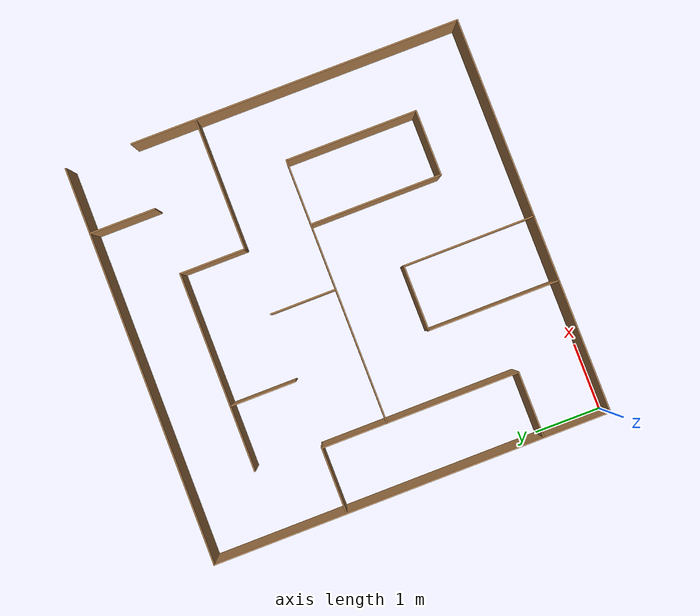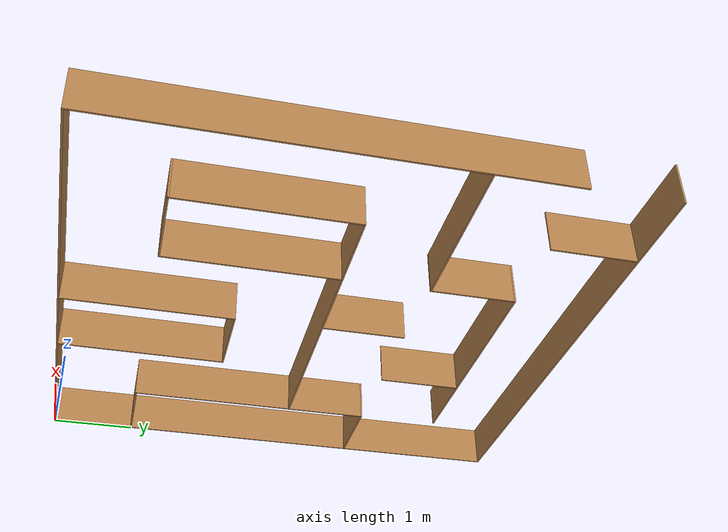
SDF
<?xml version='1.0'?>
<sdf version='1.6'>
  <model name='circuit1v3'>
    <pose frame=''>2.99678 2.98827 0 0 -0 0</pose>
    <link name='Wall_0'>
      <collision name='Wall_0_Collision'>
        <geometry>
          <box>
            <size>6 0.02 0.5</size>
          </box>
        </geometry>
        <pose frame=''>0 0 0.25 0 -0 0</pose>
      </collision>
      <visual name='Wall_0_Visual'>
        <pose frame=''>0 0 0.25 0 -0 0</pose>
        <geometry>
          <box>
            <size>6 0.02 0.5</size>
          </box>
        </geometry>
        <material>
          <script>
            <uri>file://media/materials/scripts/gazebo.material</uri>
            <name>Gazebo/Wood</name>
          </script>
          <ambient>1 1 1 1</ambient>
        </material>
        <meta>
          <layer>0</layer>
        </meta>
      </visual>
      <pose frame=''>0 -2.99 0 0 -0 0</pose>
    </link>
    <link name='Wall_10'>
      <collision name='Wall_10_Collision'>
        <geometry>
          <box>
            <size>3 0.02 0.5</size>
          </box>
        </geometry>
        <pose frame=''>0 0 0.25 0 -0 0</pose>
      </collision>
      <visual name='Wall_10_Visual'>
        <pose frame=''>0 0 0.25 0 -0 0</pose>
        <geometry>
          <box>
            <size>3 0.02 0.5</size>
          </box>
        </geometry>
        <material>
          <script>
            <uri>file://media/materials/scripts/gazebo.material</uri>
            <name>Gazebo/Wood</name>
          </script>
          <ambient>1 1 1 1</ambient>
        </material>
        <meta>
          <layer>0</layer>
        </meta>
      </visual>
      <pose frame=''>-2.00694 -0.492791 0 0 -0 1.5708</pose>
    </link>
    <link name='Wall_12'>
      <collision name='Wall_12_Collision'>
        <geometry>
          <box>
            <size>1 0.02 0.5</size>
          </box>
        </geometry>
        <pose frame=''>0 0 0.25 0 -0 0</pose>
      </collision>
      <visual name='Wall_12_Visual'>
        <pose frame=''>0 0 0.25 0 -0 0</pose>
        <geometry>
          <box>
            <size>1 0.02 0.5</size>
          </box>
        </geometry>
        <material>
          <script>
            <uri>file://media/materials/scripts/gazebo.material</uri>
            <name>Gazebo/Wood</name>
          </script>
          <ambient>1 1 1 1</ambient>
        </material>
        <meta>
          <layer>0</layer>
        </meta>
      </visual>
      <pose frame=''>-2.49694 0.997209 0 0 -0 3.14159</pose>
    </link>
    <link name='Wall_14'>
      <collision name='Wall_14_Collision'>
        <geometry>
          <box>
            <size>2 0.02 0.5</size>
          </box>
        </geometry>
        <pose frame=''>0 0 0.25 0 -0 0</pose>
      </collision>
      <visual name='Wall_14_Visual'>
        <pose frame=''>0 0 0.25 0 -0 0</pose>
        <geometry>
          <box>
            <size>2 0.02 0.5</size>
          </box>
        </geometry>
        <material>
          <script>
            <uri>file://media/materials/scripts/gazebo.material</uri>
            <name>Gazebo/Wood</name>
          </script>
          <ambient>1 1 1 1</ambient>
        </material>
        <meta>
          <layer>0</layer>
        </meta>
      </visual>
      <pose frame=''>-1.00141 -1.99854 0 0 -0 1.5708</pose>
    </link>
    <link name='Wall_16'>
      <collision name='Wall_16_Collision'>
        <geometry>
          <box>
            <size>1 0.02 0.5</size>
          </box>
        </geometry>
        <pose frame=''>0 0 0.25 0 -0 0</pose>
      </collision>
      <visual name='Wall_16_Visual'>
        <pose frame=''>0 0 0.25 0 -0 0</pose>
        <geometry>
          <box>
            <size>1 0.02 0.5</size>
          </box>
        </geometry>
        <material>
          <script>
            <uri>file://media/materials/scripts/gazebo.material</uri>
            <name>Gazebo/Wood</name>
          </script>
          <ambient>1 1 1 1</ambient>
        </material>
        <meta>
          <layer>0</layer>
        </meta>
      </visual>
      <pose frame=''>-0.511409 -1.00854 0 0 -0 0</pose>
    </link>
    <link name='Wall_2'>
      <collision name='Wall_2_Collision'>
        <geometry>
          <box>
            <size>6 0.02 0.5</size>
          </box>
        </geometry>
        <pose frame=''>0 0 0.25 0 -0 0</pose>
      </collision>
      <visual name='Wall_2_Visual'>
        <pose frame=''>0 0 0.25 0 -0 0</pose>
        <geometry>
          <box>
            <size>6 0.02 0.5</size>
          </box>
        </geometry>
        <material>
          <script>
            <uri>file://media/materials/scripts/gazebo.material</uri>
            <name>Gazebo/Wood</name>
          </script>
          <ambient>1 1 1 1</ambient>
        </material>
        <meta>
          <layer>0</layer>
        </meta>
      </visual>
      <pose frame=''>-2.99 0 0 0 -0 1.5708</pose>
    </link>
    <link name='Wall_20'>
      <collision name='Wall_20_Collision'>
        <geometry>
          <box>
            <size>2 0.02 0.5</size>
          </box>
        </geometry>
        <pose frame=''>0 0 0.25 0 -0 0</pose>
      </collision>
      <visual name='Wall_20_Visual'>
        <pose frame=''>0 0 0.25 0 -0 0</pose>
        <geometry>
          <box>
            <size>2 0.02 0.5</size>
          </box>
        </geometry>
        <material>
          <script>
            <uri>file://media/materials/scripts/gazebo.material</uri>
            <name>Gazebo/Wood</name>
          </script>
          <ambient>1 1 1 1</ambient>
        </material>
        <meta>
          <layer>0</layer>
        </meta>
      </visual>
      <pose frame=''>-0.021409 -1.99854 0 0 -0 -1.5708</pose>
    </link>
    <link name='Wall_22'>
      <collision name='Wall_22_Collision'>
        <geometry>
          <box>
            <size>4 0.02 0.5</size>
          </box>
        </geometry>
        <pose frame=''>0 0 0.25 0 -0 0</pose>
      </collision>
      <visual name='Wall_22_Visual'>
        <pose frame=''>0 0 0.25 0 -0 0</pose>
        <geometry>
          <box>
            <size>4 0.02 0.5</size>
          </box>
        </geometry>
        <material>
          <script>
            <uri>file://media/materials/scripts/gazebo.material</uri>
            <name>Gazebo/Wood</name>
          </script>
          <ambient>1 1 1 1</ambient>
        </material>
        <meta>
          <layer>0</layer>
        </meta>
      </visual>
      <pose frame=''>-0.008495 0.012338 0 0 -0 0</pose>
    </link>
    <link name='Wall_24'>
      <collision name='Wall_24_Collision'>
        <geometry>
          <box>
            <size>2 0.02 0.5</size>
          </box>
        </geometry>
        <pose frame=''>0 0 0.25 0 -0 0</pose>
      </collision>
      <visual name='Wall_24_Visual'>
        <pose frame=''>0 0 0.25 0 -0 0</pose>
        <geometry>
          <box>
            <size>2 0.02 0.5</size>
          </box>
        </geometry>
        <material>
          <script>
            <uri>file://media/materials/scripts/gazebo.material</uri>
            <name>Gazebo/Wood</name>
          </script>
          <ambient>1 1 1 1</ambient>
        </material>
        <meta>
          <layer>0</layer>
        </meta>
      </visual>
      <pose frame=''>1.98151 -0.977662 0 0 -0 -1.5708</pose>
    </link>
    <link name='Wall_26'>
      <collision name='Wall_26_Collision'>
        <geometry>
          <box>
            <size>1 0.02 0.5</size>
          </box>
        </geometry>
        <pose frame=''>0 0 0.25 0 -0 0</pose>
      </collision>
      <visual name='Wall_26_Visual'>
        <pose frame=''>0 0 0.25 0 -0 0</pose>
        <geometry>
          <box>
            <size>1 0.02 0.5</size>
          </box>
        </geometry>
        <material>
          <script>
            <uri>file://media/materials/scripts/gazebo.material</uri>
            <name>Gazebo/Wood</name>
          </script>
          <ambient>1 1 1 1</ambient>
        </material>
        <meta>
          <layer>0</layer>
        </meta>
      </visual>
      <pose frame=''>1.49151 -1.96766 0 0 -0 3.14159</pose>
    </link>
    <link name='Wall_28'>
      <collision name='Wall_28_Collision'>
        <geometry>
          <box>
            <size>2 0.02 0.5</size>
          </box>
        </geometry>
        <pose frame=''>0 0 0.25 0 -0 0</pose>
      </collision>
      <visual name='Wall_28_Visual'>
        <pose frame=''>0 0 0.25 0 -0 0</pose>
        <geometry>
          <box>
            <size>2 0.02 0.5</size>
          </box>
        </geometry>
        <material>
          <script>
            <uri>file://media/materials/scripts/gazebo.material</uri>
            <name>Gazebo/Wood</name>
          </script>
          <ambient>1 1 1 1</ambient>
        </material>
        <meta>
          <layer>0</layer>
        </meta>
      </visual>
      <pose frame=''>1.00151 -0.977662 0 0 -0 1.5708</pose>
    </link>
    <link name='Wall_30'>
      <collision name='Wall_30_Collision'>
        <geometry>
          <box>
            <size>1 0.02 0.5</size>
          </box>
        </geometry>
        <pose frame=''>0 0 0.25 0 -0 0</pose>
      </collision>
      <visual name='Wall_30_Visual'>
        <pose frame=''>0 0 0.25 0 -0 0</pose>
        <geometry>
          <box>
            <size>1 0.02 0.5</size>
          </box>
        </geometry>
        <material>
          <script>
            <uri>file://media/materials/scripts/gazebo.material</uri>
            <name>Gazebo/Wood</name>
          </script>
          <ambient>1 1 1 1</ambient>
        </material>
        <meta>
          <layer>0</layer>
        </meta>
      </visual>
      <pose frame=''>0.01363 0.505291 0 0 -0 1.5708</pose>
    </link>
    <link name='Wall_32'>
      <collision name='Wall_32_Collision'>
        <geometry>
          <box>
            <size>2 0.02 0.5</size>
          </box>
        </geometry>
        <pose frame=''>0 0 0.25 0 -0 0</pose>
      </collision>
      <visual name='Wall_32_Visual'>
        <pose frame=''>0 0 0.25 0 -0 0</pose>
        <geometry>
          <box>
            <size>2 0.02 0.5</size>
          </box>
        </geometry>
        <material>
          <script>
            <uri>file://media/materials/scripts/gazebo.material</uri>
            <name>Gazebo/Wood</name>
          </script>
          <ambient>1 1 1 1</ambient>
        </material>
        <meta>
          <layer>0</layer>
        </meta>
      </visual>
      <pose frame=''>1.99992 1.01487 0 0 -0 3.14159</pose>
    </link>
    <link name='Wall_34'>
      <collision name='Wall_34_Collision'>
        <geometry>
          <box>
            <size>1 0.02 0.5</size>
          </box>
        </geometry>
        <pose frame=''>0 0 0.25 0 -0 0</pose>
      </collision>
      <visual name='Wall_34_Visual'>
        <pose frame=''>0 0 0.25 0 -0 0</pose>
        <geometry>
          <box>
            <size>1 0.02 0.5</size>
          </box>
        </geometry>
        <material>
          <script>
            <uri>file://media/materials/scripts/gazebo.material</uri>
            <name>Gazebo/Wood</name>
          </script>
          <ambient>1 1 1 1</ambient>
        </material>
        <meta>
          <layer>0</layer>
        </meta>
      </visual>
      <pose frame=''>1.01007 1.5048 0 0 -0 1.57049</pose>
    </link>
    <link name='Wall_36'>
      <collision name='Wall_36_Collision'>
        <geometry>
          <box>
            <size>3 0.02 0.5</size>
          </box>
        </geometry>
        <pose frame=''>0 0 0.25 0 -0 0</pose>
      </collision>
      <visual name='Wall_36_Visual'>
        <pose frame=''>0 0 0.25 0 -0 0</pose>
        <geometry>
          <box>
            <size>3 0.02 0.5</size>
          </box>
        </geometry>
        <material>
          <script>
            <uri>file://media/materials/scripts/gazebo.material</uri>
            <name>Gazebo/Wood</name>
          </script>
          <ambient>1 1 1 1</ambient>
        </material>
        <meta>
          <layer>0</layer>
        </meta>
      </visual>
      <pose frame=''>-0.479776 1.99473 0 0 -0 3.14159</pose>
    </link>
    <link name='Wall_38'>
      <collision name='Wall_38_Collision'>
        <geometry>
          <box>
            <size>1 0.02 0.5</size>
          </box>
        </geometry>
        <pose frame=''>0 0 0.25 0 -0 0</pose>
      </collision>
      <visual name='Wall_38_Visual'>
        <pose frame=''>0 0 0.25 0 -0 0</pose>
        <geometry>
          <box>
            <size>1 0.02 0.5</size>
          </box>
        </geometry>
        <material>
          <script>
            <uri>file://media/materials/scripts/gazebo.material</uri>
            <name>Gazebo/Wood</name>
          </script>
          <ambient>1 1 1 1</ambient>
        </material>
        <meta>
          <layer>0</layer>
        </meta>
      </visual>
      <pose frame=''>-0.998332 1.50346 0 0 -0 -1.5708</pose>
    </link>
    <link name='Wall_4'>
      <collision name='Wall_4_Collision'>
        <geometry>
          <box>
            <size>6 0.02 0.5</size>
          </box>
        </geometry>
        <pose frame=''>0 0 0.25 0 -0 0</pose>
      </collision>
      <visual name='Wall_4_Visual'>
        <pose frame=''>0 0 0.25 0 -0 0</pose>
        <geometry>
          <box>
            <size>6 0.02 0.5</size>
          </box>
        </geometry>
        <material>
          <script>
            <uri>file://media/materials/scripts/gazebo.material</uri>
            <name>Gazebo/Wood</name>
          </script>
          <ambient>1 1 1 1</ambient>
        </material>
        <meta>
          <layer>0</layer>
        </meta>
      </visual>
      <pose frame=''>0 2.99 0 0 -0 0</pose>
    </link>
    <link name='Wall_40'>
      <collision name='Wall_40_Collision'>
        <geometry>
          <box>
            <size>1 0.02 0.5</size>
          </box>
        </geometry>
        <pose frame=''>0 0 0.25 0 -0 0</pose>
      </collision>
      <visual name='Wall_40_Visual'>
        <pose frame=''>0 0 0.25 0 -0 0</pose>
        <geometry>
          <box>
            <size>1 0.02 0.5</size>
          </box>
        </geometry>
        <material>
          <script>
            <uri>file://media/materials/scripts/gazebo.material</uri>
            <name>Gazebo/Wood</name>
          </script>
          <ambient>1 1 1 1</ambient>
        </material>
        <meta>
          <layer>0</layer>
        </meta>
      </visual>
      <pose frame=''>2.00228 2.49948 0 0 -0 -1.5708</pose>
    </link>
    <link name='Wall_6'>
      <collision name='Wall_6_Collision'>
        <geometry>
          <box>
            <size>5 0.02 0.5</size>
          </box>
        </geometry>
        <pose frame=''>0 0 0.25 0 -0 0</pose>
      </collision>
      <visual name='Wall_6_Visual'>
        <pose frame=''>0 0 0.25 0 -0 0</pose>
        <geometry>
          <box>
            <size>5 0.02 0.5</size>
          </box>
        </geometry>
        <material>
          <script>
            <uri>file://media/materials/scripts/gazebo.material</uri>
            <name>Gazebo/Wood</name>
          </script>
          <ambient>1 1 1 1</ambient>
        </material>
        <meta>
          <layer>0</layer>
        </meta>
      </visual>
      <pose frame=''>2.99 -0.5 0 0 -0 1.5708</pose>
    </link>
    <link name='Wall_8'>
      <collision name='Wall_8_Collision'>
        <geometry>
          <box>
            <size>1 0.02 0.5</size>
          </box>
        </geometry>
        <pose frame=''>0 0 0.25 0 -0 0</pose>
      </collision>
      <visual name='Wall_8_Visual'>
        <pose frame=''>0 0 0.25 0 -0 0</pose>
        <geometry>
          <box>
            <size>1 0.02 0.5</size>
          </box>
        </geometry>
        <material>
          <script>
            <uri>file://media/materials/scripts/gazebo.material</uri>
            <name>Gazebo/Wood</name>
          </script>
          <ambient>1 1 1 1</ambient>
        </material>
        <meta>
          <layer>0</layer>
        </meta>
      </visual>
      <pose frame=''>-2.49694 -1.98279 0 0 -0 0</pose>
    </link>
    <static>1</static>
  </model>
</sdf>
